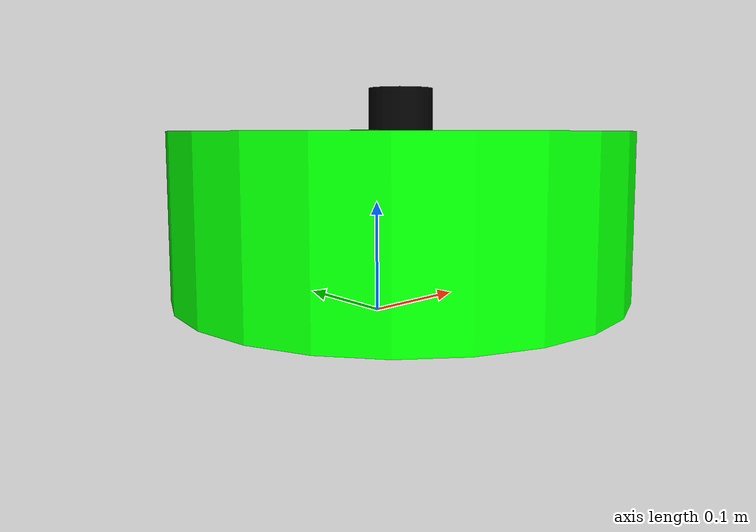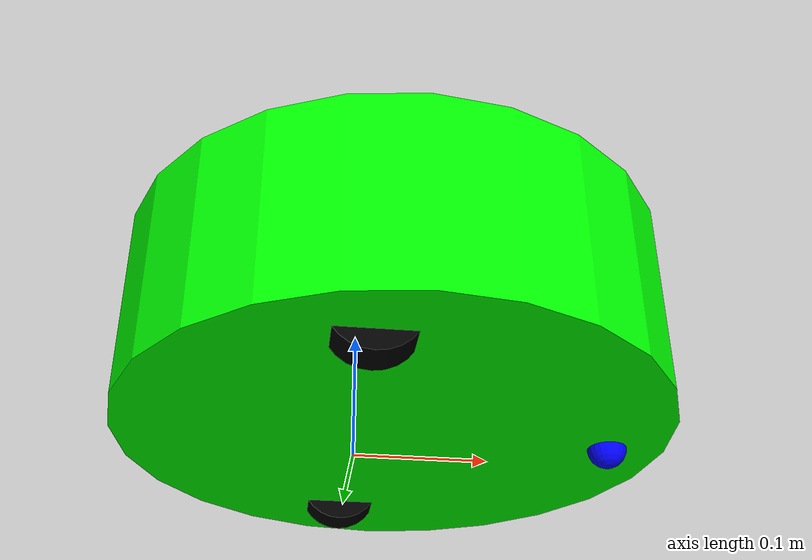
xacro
<?xml version="1.0"?>
<robot xmlns:xacro="https://www.ros.org/wiki/xacro" name="diff_robot">
    <xacro:include filename="inertial_macros.xacro"/>
    <xacro:include filename="properties.xacro"/>
    <xacro:include filename="chassis.xacro"/>
    <xacro:include filename="wheels.xacro"/>
    <xacro:include filename="caster_wheel.xacro"/>
    <xacro:include filename="lidar.xacro"/>
    <xacro:include filename="imu.xacro"/>
    <xacro:include filename="gazebo_control.xacro"/>

    <link name="base_link"/>

    <link name="base_footprint"/>

    <joint name="base_footprint_joint" type="fixed">
        <parent link="base_footprint"/>
        <child link="base_link"/>
        <origin xyz="0 0 0.0325" rpy="0 0 0"/>
    </joint>

</robot>

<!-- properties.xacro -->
<robot xmlns:xacro="https://www.ros.org/wiki/xacro">

                                       <!--properties-->
<!-- Chassis-->
<xacro:property name="chassis_height" value="0.15"/>
<xacro:property name="chassis_radius" value="0.210"/>
<xacro:property name="chassis_mass" value="4.0"/>

<!-- Wheels-->
<xacro:property name="wheel_offset_x" value="-0.03"/>
<xacro:property name="wheel_offset_y" value="0.14915"/>
<xacro:property name="wheel_offset_z" value="-0.0575"/>
<xacro:property name="wheel_thickness" value="0.027"/>
<xacro:property name="wheel_radius" value="0.0325"/>
<xacro:property name="wheel_mass" value="0.037"/>

<!-- Caster Wheel-->
<xacro:property name="caster_wheel_radius" value="0.015"/>
<xacro:property name="caster_wheel_mass" value="0.02"/>
<xacro:property name="caster_wheel_offset_x" value="0.165"/>
<xacro:property name="caster_wheel_offset_z" value="0.075"/>

                                        <!-- Colors -->

<material name="white">
    <color rgba="1 1 1 1"/>
</material>

<material name="red">
    <color rgba="1 0 0 1"/>
</material>

<material name="green">
    <color rgba="0 1 0 1"/>
</material>

<material name="blue">
    <color rgba="0 0 1 1"/>
</material>

<material name="black">
    <color rgba="0 0 0 1"/>
</material>

<material name="grey">
    <color rgba="0.5 0.5 0.5 1"/>
</material>

</robot>

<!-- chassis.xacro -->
<robot xmlns:xacro="https://www.ros.org/wiki/xacro">

    <!-- Chassis Link-->
    <link name="chassis_link">
        <visual>
            <origin xyz="0.0 0.0 0.0" rpy="0.0 0.0 0.0"/>
            <geometry>
                <cylinder radius="${chassis_radius}" length="${chassis_height}"/>
            </geometry>
            <material name="green"/>
        </visual>

        <collision>
            <origin xyz="0.0 0.0 0.0" rpy="0.0 0.0 0.0"/>
            <geometry>
                <cylinder radius="${chassis_radius}" length="${chassis_height}"/>
            </geometry>
        </collision>

        <xacro:inertial_cylinder mass="4" length="${chassis_height}" radius="${chassis_radius}">
            <origin xyz="0.0 0.0 0.0" rpy="0.0 0.0 0.0"/>
        </xacro:inertial_cylinder>
    </link>

    <!-- Chassis Joint-->
    <joint name="chassis_joint" type="fixed">
        <parent link="base_link"/>
        <child link="chassis_link"/>
        <origin xyz="0.03 0.0 0.0575" rpy="0.0 0.0 0.0"/>
    </joint>

    <gazebo reference="chassis_link">
        <material> Gazebo/Green</material>
    </gazebo>

</robot>

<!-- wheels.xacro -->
<robot xmlns:xacro="https://www.ros.org/wiki/xacro">

    <!--Wheel Link Macro-->
    <xacro:macro name="wheel_link" params="link_name">
        <link name="${link_name}">
            <visual>
                <geometry>
                    <cylinder radius="${wheel_radius}" length="${wheel_thickness}"/>
                </geometry>
                <material name="black"/>
            </visual>
            <collision>
                <geometry>
                    <cylinder radius="${wheel_radius}" length="${wheel_thickness}"/>
                </geometry>
            </collision>
            <xacro:inertial_cylinder mass="${wheel_mass}" length="${wheel_thickness}" radius="${wheel_radius}">
                <origin xyz="0.0 0.0 0.0" rpy="0.0 0.0 0.0"/>
            </xacro:inertial_cylinder>
        </link>
    </xacro:macro>

    <!--Wheel Joint Macro-->
    <xacro:macro name="wheel_joint" params="joint_name wheel_name y_offset">
        <joint name="${joint_name}" type="continuous">
            <origin xyz="0.0 ${y_offset} 0.0" rpy="${-pi/2} 0.0 0.0"/>
            <parent link="base_link"/>
            <child link="${wheel_name}"/>
            <axis xyz="0.0 0.0 1"/>
        </joint>
    </xacro:macro>

    <!--Left Wheel Link-->
    <xacro:wheel_link link_name="left_wheel_link"/>
    <!--Left Wheel Joint-->
    <xacro:wheel_joint joint_name="left_wheel_joint" wheel_name="left_wheel_link" y_offset="${wheel_offset_y}"/>

    <!--Right Wheel Link-->
    <xacro:wheel_link link_name="right_wheel_link"/>
    <!--Right Wheel Joint-->
    <xacro:wheel_joint joint_name="right_wheel_joint" wheel_name="right_wheel_link" y_offset="${-wheel_offset_y}"/>

    <gazebo reference="left_wheel_link">
        <material> Gazebo/Black </material>
    </gazebo>

    <gazebo reference="right_wheel_link">
        <material> Gazebo/Black </material>
    </gazebo>

</robot>

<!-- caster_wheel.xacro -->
<robot xmlns:xacro="https://www.ros.org/wiki/xacro">

    <!-- Caster Wheel Link-->
    <link name="caster_wheel_link">
        <visual>
            <origin xyz="0.0 0.0 0.0" rpy="0.0 0.0 0.0"/>
            <geometry>
                <sphere radius="${caster_wheel_radius}"/>
            </geometry>
            <material name="blue"/>
        </visual>

        <collision>
            <origin xyz="0.0 0.0 0.0" rpy="0.0 0.0 0.0"/>
            <geometry>
                <sphere radius="${caster_wheel_radius}"/>
            </geometry>
        </collision>

        <xacro:inertial_sphere mass="${caster_wheel_mass}" radius="${caster_wheel_radius}">
            <origin xyz="0.0 0.0 0.0" rpy="0.0 0.0 0.0"/>
        </xacro:inertial_sphere>
    </link>

    <!-- Caster Wheel Joint -->
    <joint name="caster_wheel_joint" type="fixed">
        <origin xyz="${caster_wheel_offset_x} 0.0 ${-caster_wheel_offset_z}" rpy="0.0 0.0 0.0"/>
        <parent link="chassis_link"/>
        <child link="caster_wheel_link"/>
    </joint>

    <gazebo reference="caster_wheel_link">
        <material>
            Gazebo/Blue
        </material>
    </gazebo>

    <gazebo reference="caster_wheel_link">
        <mu1 value="0.001"/>
        <mu2 value="0.001"/>
    </gazebo>

</robot>

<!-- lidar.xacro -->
<robot xmlns:xacro="https://www.ros.org/wiki/xacro">

    <!-- Lidar Frame-->
    <link name="laser_frame">
        <visual>
            <geometry>
                <cylinder radius="0.03" length="0.04"/>
            </geometry>
            <material name="black"/>
        </visual>
    </link>

    <!-- Lidar Joint-->
    <joint name="laser_joint" type="fixed">
        <origin xyz="0.0 0.0 0.095" rpy="0.0 0.0 0.0"/>
        <parent link="chassis_link"/>
        <child link="laser_frame"/>
    </joint>

    <!-- Lidar Plugin -->
    <gazebo reference="laser_frame">
        <material>Gazebo/Black</material>

        <sensor name="laser" type="ray">
            <pose> 0 0 0 0 0 0 </pose>
            <visualize>false</visualize>
            <update_rate>100</update_rate>
            <ray>
                <scan>
                    <horizontal>
                        <samples>360</samples>
                        <min_angle>-3.14</min_angle>
                        <max_angle>3.14</max_angle>
                    </horizontal>
                </scan>
                <range>
                    <min>0.3</min>
                    <max>12</max>
                </range>
            </ray>
            <plugin name="laser_controller" filename="libgazebo_ros_ray_sensor.so">
                <ros>
                     <remapping>~/out:=scan</remapping>
                </ros>
                <output_type>sensor_msgs/LaserScan</output_type>
                <frame_name>laser_frame</frame_name>
            </plugin>
        </sensor>
    </gazebo>

    <gazebo reference="laser_frame">
        <material>
            Gazebo/Black
        </material>
    </gazebo>

</robot>

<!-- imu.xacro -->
<robot xmlns:xacro="https://www.ros.org/wiki/xacro">

<!-- IMU Frame -->

 <link name="imu_frame">
    <visual>
      <geometry>
          <box size="0.01556012 0.02026185 0.00254"/>
      </geometry>
      <material name="Red"/>
     </visual>
  </link>

<!-- IMU Joint-->
 <joint name="imu_joint" type="fixed">
    <origin xyz="-0.045 0.0 0.075" rpy="0.0 0.0 0.0"/>
    <parent link="chassis_link"/>
    <child link="imu_frame"/>
  </joint>

<!--IMU_Plugin-->
  <gazebo reference="imu_frame">
    <gravity>true</gravity>
    <sensor name="imu_sensor" type="imu">
      <always_on>true</always_on>
      <update_rate>100</update_rate>
      <visualize>true</visualize>
      <topic>__default_topic__</topic>
      <plugin filename="libgazebo_ros_imu_sensor.so" name="imu">
        <topicName>imu</topicName>
        <bodyName>imu_frame</bodyName>
        <updateRateHZ>10.0</updateRateHZ>
        <gaussianNoise>0.0</gaussianNoise>
        <xyzOffset>0 0 0</xyzOffset>
        <rpyOffset>0 0 0</rpyOffset>
        <frameName>imu_frame</frameName>
        <initialOrientationAsReference>false</initialOrientationAsReference>
      </plugin>
      <pose>0 0 0 0 0 0</pose>
    </sensor>
  </gazebo>

  <gazebo reference="imu_frame">
    <material>
      Gazebo/Red
    </material>
  </gazebo>

</robot>
